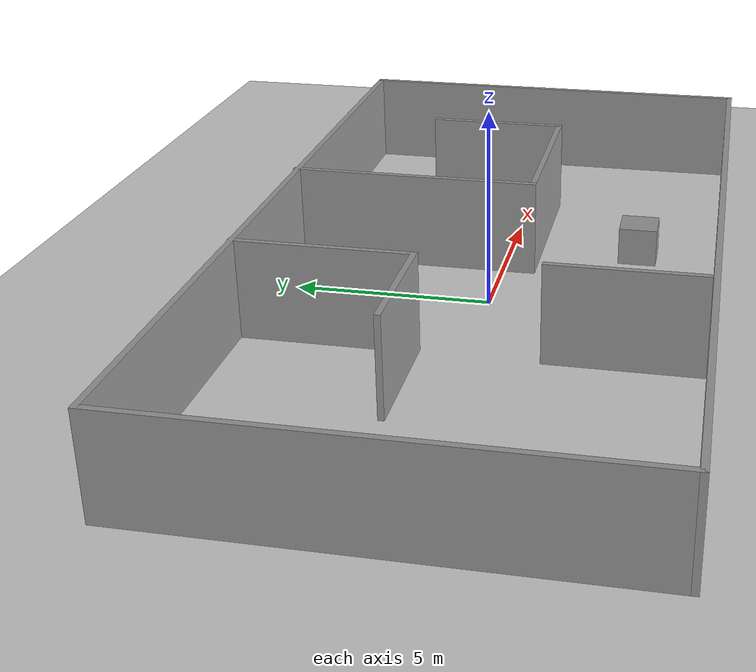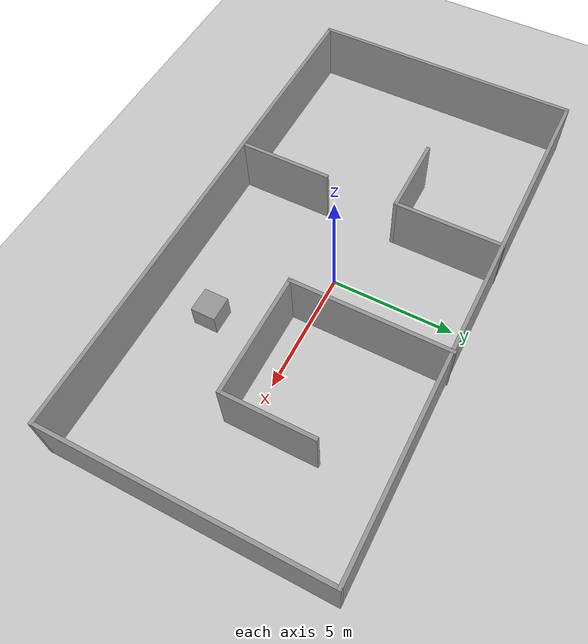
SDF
<sdf version="1.7">
 <world name="default">
  <light name="sun" type="directional">
   <pose>0 0 10 0 -0 0</pose>
   <diffuse>0.8 0.8 0.8 1</diffuse>
   <specular>0.2 0.2 0.2 1</specular>
   <attenuation>
    <range>1000</range>
    <constant>0.9</constant>
    <linear>0.01</linear>
    <quadratic>0.001</quadratic>
   </attenuation>
   <direction>-0.5 0.1 -0.9</direction>
   <spot><inner_angle>0</inner_angle><outer_angle>0</outer_angle><falloff>0</falloff></spot>
  </light>
  <model name="ground_plane">
   <static>1</static>
   <link name="link">
    <collision name="collision">
     <geometry><plane><normal>0 0 1</normal><size>100 100</size></plane></geometry>
     <surface><friction><ode><mu>100</mu><mu2>50</mu2></ode></friction></surface>
    </collision>
    <visual name="visual">
     <cast_shadows>0</cast_shadows>
     <geometry><plane><normal>0 0 1</normal><size>100 100</size></plane></geometry>
     <material>
      <script><uri>file://media/materials/scripts/gazebo.material</uri><name>Gazebo/Grey</name></script>
     </material>
    </visual>
   </link>
  </model>
  <gravity>0 0 -9.8</gravity>
  <magnetic_field>6e-06 2.3e-05 -4.2e-05</magnetic_field>
  <atmosphere type="adiabatic"/>
  <physics type="ode">
   <max_step_size>0.001</max_step_size>
   <real_time_factor>1</real_time_factor>
   <real_time_update_rate>1000</real_time_update_rate>
  </physics>
  <scene><ambient>0.4 0.4 0.4 1</ambient><background>0.7 0.7 0.7 1</background><shadows>1</shadows></scene>
  <audio><device>default</device></audio>
  <spherical_coordinates>
   <surface_model>EARTH_WGS84</surface_model>
   <latitude_deg>0</latitude_deg>
   <longitude_deg>0</longitude_deg>
   <elevation>0</elevation>
   <heading_deg>0</heading_deg>
  </spherical_coordinates>
  <model name="room">
   <pose>0.004074 0.001795 0 0 -0 0</pose>
   <link name="Wall_0">
    <collision name="Wall_0_Collision">
     <geometry><box><size>21.25 0.15 2.5</size></box></geometry>
     <pose>0 0 1.25 0 -0 0</pose>
    </collision>
    <visual name="Wall_0_Visual">
     <pose>0 0 1.25 0 -0 0</pose>
     <geometry><box><size>21.25 0.15 2.5</size></box></geometry>
     <material>
      <script><uri>file://media/materials/scripts/gazebo.material</uri><name>Gazebo/Grey</name></script>
      <ambient>1 1 1 1</ambient>
     </material>
     <meta><layer>0</layer></meta>
    </visual>
    <pose>0 5.52412 0 0 -0 0</pose>
   </link>
   <link name="Wall_1">
    <collision name="Wall_1_Collision">
     <geometry><box><size>11.25 0.15 2.5</size></box></geometry>
     <pose>0 0 1.25 0 -0 0</pose>
    </collision>
    <visual name="Wall_1_Visual">
     <pose>0 0 1.25 0 -0 0</pose>
     <geometry><box><size>11.25 0.15 2.5</size></box></geometry>
     <material>
      <script><uri>file://media/materials/scripts/gazebo.material</uri><name>Gazebo/Grey</name></script>
      <ambient>1 1 1 1</ambient>
     </material>
     <meta><layer>0</layer></meta>
    </visual>
    <pose>10.55 -0.025877 0 0 -0 -1.5708</pose>
   </link>
   <link name="Wall_11">
    <collision name="Wall_11_Collision">
     <geometry><box><size>6.5 0.15 2.5</size></box></geometry>
     <pose>0 0 1.25 0 -0 0</pose>
    </collision>
    <visual name="Wall_11_Visual">
     <pose>0 0 1.25 0 -0 0</pose>
     <geometry><box><size>6.5 0.15 2.5</size></box></geometry>
     <material>
      <script><uri>file://media/materials/scripts/gazebo.material</uri><name>Gazebo/Grey</name></script>
      <ambient>1 1 1 1</ambient>
     </material>
     <meta><layer>0</layer></meta>
    </visual>
    <pose>2.03281 2.40088 0 0 -0 -1.5708</pose>
   </link>
   <link name="Wall_12">
    <collision name="Wall_12_Collision">
     <geometry><box><size>5 0.15 2.5</size></box></geometry>
     <pose>0 0 1.25 0 -0 0</pose>
    </collision>
    <visual name="Wall_12_Visual">
     <pose>0 0 1.25 0 -0 0</pose>
     <geometry><box><size>5 0.15 2.5</size></box></geometry>
     <material>
      <script><uri>file://media/materials/scripts/gazebo.material</uri><name>Gazebo/Grey</name></script>
      <ambient>1 1 1 1</ambient>
     </material>
     <meta><layer>0</layer></meta>
    </visual>
    <pose>4.45781 -0.774123 0 0 -0 0</pose>
   </link>
   <link name="Wall_13">
    <collision name="Wall_13_Collision">
     <geometry><box><size>3.75 0.15 2.5</size></box></geometry>
     <pose>0 0 1.25 0 -0 0</pose>
    </collision>
    <visual name="Wall_13_Visual">
     <pose>0 0 1.25 0 -0 0</pose>
     <geometry><box><size>3.75 0.15 2.5</size></box></geometry>
     <material>
      <script><uri>file://media/materials/scripts/gazebo.material</uri><name>Gazebo/Grey</name></script>
      <ambient>1 1 1 1</ambient>
     </material>
     <meta><layer>0</layer></meta>
    </visual>
    <pose>6.88281 1.02588 0 0 -0 1.5708</pose>
   </link>
   <link name="Wall_2">
    <collision name="Wall_2_Collision">
     <geometry><box><size>21.25 0.15 2.5</size></box></geometry>
     <pose>0 0 1.25 0 -0 0</pose>
    </collision>
    <visual name="Wall_2_Visual">
     <pose>0 0 1.25 0 -0 0</pose>
     <geometry><box><size>21.25 0.15 2.5</size></box></geometry>
     <material>
      <script><uri>file://media/materials/scripts/gazebo.material</uri><name>Gazebo/Grey</name></script>
      <ambient>1 1 1 1</ambient>
     </material>
     <meta><layer>0</layer></meta>
    </visual>
    <pose>0 -5.57588 0 0 -0 3.14159</pose>
   </link>
   <link name="Wall_3">
    <collision name="Wall_3_Collision">
     <geometry><box><size>11.25 0.15 2.5</size></box></geometry>
     <pose>0 0 1.25 0 -0 0</pose>
    </collision>
    <visual name="Wall_3_Visual">
     <pose>0 0 1.25 0 -0 0</pose>
     <geometry><box><size>11.25 0.15 2.5</size></box></geometry>
     <material>
      <script><uri>file://media/materials/scripts/gazebo.material</uri><name>Gazebo/Grey</name></script>
      <ambient>1 1 1 1</ambient>
     </material>
     <meta><layer>0</layer></meta>
    </visual>
    <pose>-10.55 -0.025877 0 0 -0 1.5708</pose>
   </link>
   <link name="Wall_5">
    <collision name="Wall_5_Collision">
     <geometry><box><size>4.5 0.15 2.5</size></box></geometry>
     <pose>0 0 1.25 0 -0 0</pose>
    </collision>
    <visual name="Wall_5_Visual">
     <pose>0 0 1.25 0 -0 0</pose>
     <geometry><box><size>4.5 0.15 2.5</size></box></geometry>
     <material>
      <script><uri>file://media/materials/scripts/gazebo.material</uri><name>Gazebo/Grey</name></script>
      <ambient>1 1 1 1</ambient>
     </material>
     <meta><layer>0</layer></meta>
    </visual>
    <pose>-2.85704 3.3657 0 0 -0 -1.5708</pose>
   </link>
   <link name="Wall_6">
    <collision name="Wall_6_Collision">
     <geometry><box><size>3.25 0.15 2.5</size></box></geometry>
     <pose>0 0 1.25 0 -0 0</pose>
    </collision>
    <visual name="Wall_6_Visual">
     <pose>0 0 1.25 0 -0 0</pose>
     <geometry><box><size>3.25 0.15 2.5</size></box></geometry>
     <material>
      <script><uri>file://media/materials/scripts/gazebo.material</uri><name>Gazebo/Grey</name></script>
      <ambient>1 1 1 1</ambient>
     </material>
     <meta><layer>0</layer></meta>
    </visual>
    <pose>-4.40704 1.1907 0 0 -0 3.14159</pose>
   </link>
   <link name="Wall_8">
    <collision name="Wall_8_Collision">
     <geometry><box><size>3.75 0.15 2.5</size></box></geometry>
     <pose>0 0 1.25 0 -0 0</pose>
    </collision>
    <visual name="Wall_8_Visual">
     <pose>0 0 1.25 0 -0 0</pose>
     <geometry><box><size>3.75 0.15 2.5</size></box></geometry>
     <material>
      <script><uri>file://media/materials/scripts/gazebo.material</uri><name>Gazebo/Grey</name></script>
      <ambient>1 1 1 1</ambient>
     </material>
     <meta><layer>0</layer></meta>
    </visual>
    <pose>-2.85704 -3.61166 0 0 -0 -1.5708</pose>
   </link>
   <static>1</static>
  </model>
  <model name="unit_box">
   <pose>3.52386 -3.44327 0.5 0 -0 0</pose>
   <link name="link">
    <inertial>
     <mass>1</mass>
     <inertia>
      <ixx>0.166667</ixx>
      <ixy>0</ixy>
      <ixz>0</ixz>
      <iyy>0.166667</iyy>
      <iyz>0</iyz>
      <izz>0.166667</izz>
     </inertia>
    </inertial>
    <collision name="collision"><geometry><box><size>1 1 1</size></box></geometry></collision>
    <visual name="visual">
     <geometry><box><size>1 1 1</size></box></geometry>
     <material>
      <script><name>Gazebo/Grey</name><uri>file://media/materials/scripts/gazebo.material</uri></script>
     </material>
    </visual>
   </link>
  </model>
 </world>
</sdf>
